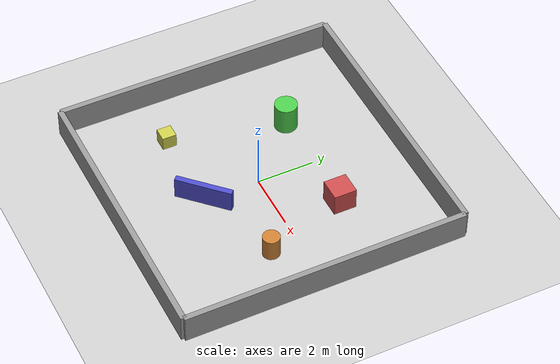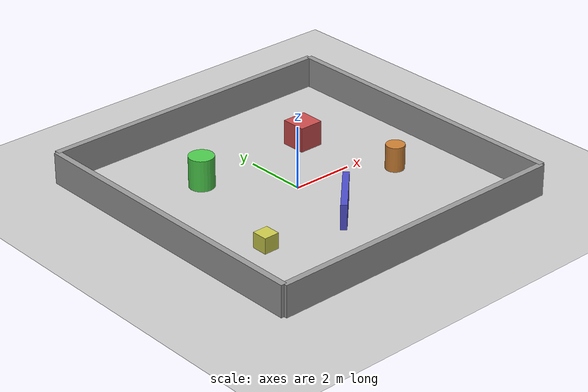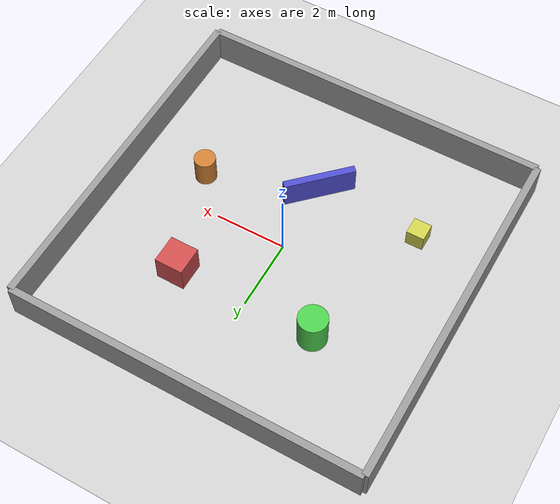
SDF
<?xml version="1.0" ?>
<!--
  Simple world for SLAM thesis experiments
  Gazebo Harmonic (gz-sim) format

  Features:
  - Ground plane
  - Walls forming a simple room with obstacles
  - Sun lighting
-->
<sdf version="1.8">
  <world name="simple_world">

    <!-- Physics settings -->
    <physics name="1ms" type="ignored">
      <max_step_size>0.001</max_step_size>
      <real_time_factor>1.0</real_time_factor>
      <real_time_update_rate>1000</real_time_update_rate>
    </physics>

    <!-- Required plugins for Gazebo Harmonic -->
    <plugin filename="gz-sim-physics-system" name="gz::sim::systems::Physics"/>
    <plugin filename="gz-sim-user-commands-system" name="gz::sim::systems::UserCommands"/>
    <plugin filename="gz-sim-scene-broadcaster-system" name="gz::sim::systems::SceneBroadcaster"/>
    <plugin filename="gz-sim-sensors-system" name="gz::sim::systems::Sensors">
      <render_engine>ogre2</render_engine>
    </plugin>
    <plugin filename="gz-sim-imu-system" name="gz::sim::systems::Imu"/>
    <plugin filename="gz-sim-contact-system" name="gz::sim::systems::Contact"/>

    <!-- Lighting -->
    <light type="directional" name="sun">
      <cast_shadows>true</cast_shadows>
      <pose>0 0 10 0 0 0</pose>
      <diffuse>0.8 0.8 0.8 1</diffuse>
      <specular>0.2 0.2 0.2 1</specular>
      <attenuation>
        <range>1000</range>
        <constant>0.9</constant>
        <linear>0.01</linear>
        <quadratic>0.001</quadratic>
      </attenuation>
      <direction>-0.5 0.1 -0.9</direction>
    </light>

    <!-- Ground plane -->
    <model name="ground_plane">
      <static>true</static>
      <link name="link">
        <collision name="collision">
          <geometry>
            <plane>
              <normal>0 0 1</normal>
              <size>100 100</size>
            </plane>
          </geometry>
          <surface>
            <friction>
              <ode>
                <mu>100</mu>
                <mu2>50</mu2>
              </ode>
            </friction>
          </surface>
        </collision>
        <visual name="visual">
          <geometry>
            <plane>
              <normal>0 0 1</normal>
              <size>100 100</size>
            </plane>
          </geometry>
          <material>
            <ambient>0.8 0.8 0.8 1</ambient>
            <diffuse>0.8 0.8 0.8 1</diffuse>
            <specular>0.8 0.8 0.8 1</specular>
          </material>
        </visual>
      </link>
    </model>

    <!-- Room walls - 10m x 10m room -->
    <!-- North wall -->
    <model name="wall_north">
      <static>true</static>
      <pose>0 5 0.5 0 0 0</pose>
      <link name="link">
        <collision name="collision">
          <geometry>
            <box><size>10 0.2 1.0</size></box>
          </geometry>
        </collision>
        <visual name="visual">
          <geometry>
            <box><size>10 0.2 1.0</size></box>
          </geometry>
          <material>
            <ambient>0.6 0.6 0.6 1</ambient>
            <diffuse>0.6 0.6 0.6 1</diffuse>
          </material>
        </visual>
      </link>
    </model>

    <!-- South wall -->
    <model name="wall_south">
      <static>true</static>
      <pose>0 -5 0.5 0 0 0</pose>
      <link name="link">
        <collision name="collision">
          <geometry>
            <box><size>10 0.2 1.0</size></box>
          </geometry>
        </collision>
        <visual name="visual">
          <geometry>
            <box><size>10 0.2 1.0</size></box>
          </geometry>
          <material>
            <ambient>0.6 0.6 0.6 1</ambient>
            <diffuse>0.6 0.6 0.6 1</diffuse>
          </material>
        </visual>
      </link>
    </model>

    <!-- East wall -->
    <model name="wall_east">
      <static>true</static>
      <pose>5 0 0.5 0 0 0</pose>
      <link name="link">
        <collision name="collision">
          <geometry>
            <box><size>0.2 10 1.0</size></box>
          </geometry>
        </collision>
        <visual name="visual">
          <geometry>
            <box><size>0.2 10 1.0</size></box>
          </geometry>
          <material>
            <ambient>0.6 0.6 0.6 1</ambient>
            <diffuse>0.6 0.6 0.6 1</diffuse>
          </material>
        </visual>
      </link>
    </model>

    <!-- West wall -->
    <model name="wall_west">
      <static>true</static>
      <pose>-5 0 0.5 0 0 0</pose>
      <link name="link">
        <collision name="collision">
          <geometry>
            <box><size>0.2 10 1.0</size></box>
          </geometry>
        </collision>
        <visual name="visual">
          <geometry>
            <box><size>0.2 10 1.0</size></box>
          </geometry>
          <material>
            <ambient>0.6 0.6 0.6 1</ambient>
            <diffuse>0.6 0.6 0.6 1</diffuse>
          </material>
        </visual>
      </link>
    </model>

    <!-- Interior obstacles for SLAM features -->
    <!-- Obstacle 1 - Large box -->
    <model name="obstacle_1">
      <static>true</static>
      <pose>2 2 0.4 0 0 0</pose>
      <link name="link">
        <collision name="collision">
          <geometry>
            <box><size>0.8 0.8 0.8</size></box>
          </geometry>
        </collision>
        <visual name="visual">
          <geometry>
            <box><size>0.8 0.8 0.8</size></box>
          </geometry>
          <material>
            <ambient>0.8 0.3 0.3 1</ambient>
            <diffuse>0.8 0.3 0.3 1</diffuse>
          </material>
        </visual>
      </link>
    </model>

    <!-- Obstacle 2 - Cylinder -->
    <model name="obstacle_2">
      <static>true</static>
      <pose>-2 2 0.5 0 0 0</pose>
      <link name="link">
        <collision name="collision">
          <geometry>
            <cylinder>
              <radius>0.4</radius>
              <length>1.0</length>
            </cylinder>
          </geometry>
        </collision>
        <visual name="visual">
          <geometry>
            <cylinder>
              <radius>0.4</radius>
              <length>1.0</length>
            </cylinder>
          </geometry>
          <material>
            <ambient>0.3 0.8 0.3 1</ambient>
            <diffuse>0.3 0.8 0.3 1</diffuse>
          </material>
        </visual>
      </link>
    </model>

    <!-- Obstacle 3 - Long wall segment -->
    <model name="obstacle_3">
      <static>true</static>
      <pose>0 -2 0.4 0 0 0.785</pose>
      <link name="link">
        <collision name="collision">
          <geometry>
            <box><size>2.0 0.2 0.8</size></box>
          </geometry>
        </collision>
        <visual name="visual">
          <geometry>
            <box><size>2.0 0.2 0.8</size></box>
          </geometry>
          <material>
            <ambient>0.3 0.3 0.8 1</ambient>
            <diffuse>0.3 0.3 0.8 1</diffuse>
          </material>
        </visual>
      </link>
    </model>

    <!-- Obstacle 4 - Small box -->
    <model name="obstacle_4">
      <static>true</static>
      <pose>-3 -2 0.25 0 0 0</pose>
      <link name="link">
        <collision name="collision">
          <geometry>
            <box><size>0.5 0.5 0.5</size></box>
          </geometry>
        </collision>
        <visual name="visual">
          <geometry>
            <box><size>0.5 0.5 0.5</size></box>
          </geometry>
          <material>
            <ambient>0.8 0.8 0.3 1</ambient>
            <diffuse>0.8 0.8 0.3 1</diffuse>
          </material>
        </visual>
      </link>
    </model>

    <!-- Obstacle 5 - Another cylinder -->
    <model name="obstacle_5">
      <static>true</static>
      <pose>3 -1 0.4 0 0 0</pose>
      <link name="link">
        <collision name="collision">
          <geometry>
            <cylinder>
              <radius>0.3</radius>
              <length>0.8</length>
            </cylinder>
          </geometry>
        </collision>
        <visual name="visual">
          <geometry>
            <cylinder>
              <radius>0.3</radius>
              <length>0.8</length>
            </cylinder>
          </geometry>
          <material>
            <ambient>0.8 0.5 0.2 1</ambient>
            <diffuse>0.8 0.5 0.2 1</diffuse>
          </material>
        </visual>
      </link>
    </model>

  </world>
</sdf>
